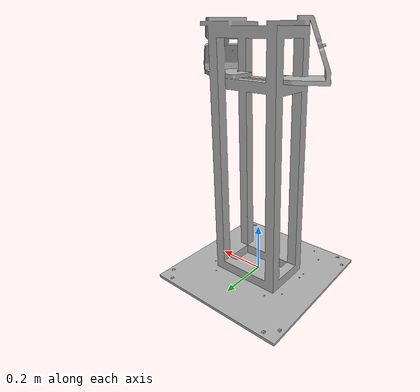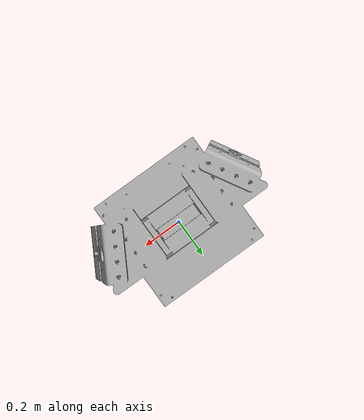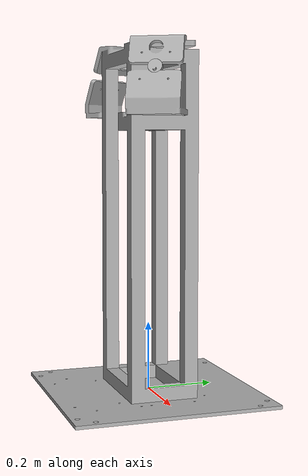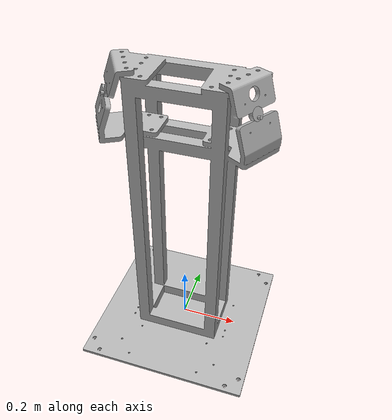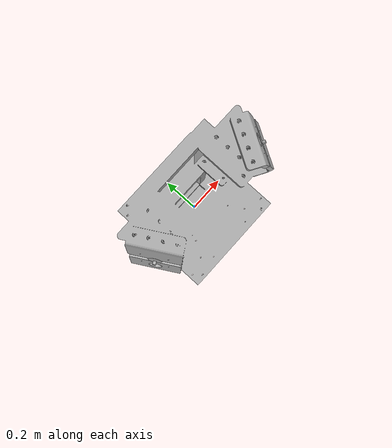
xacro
<?xml version="1.0" ?>
<robot name="dual_arm_base" xmlns:xacro="http://www.ros.org/wiki/xacro">

<xacro:macro name="dual_arm_base" params="">
<xacro:include filename="$(find dual_arm_base_description)/urdf/materials.xacro" />
<xacro:include filename="$(find dual_arm_base_description)/urdf/dual_arm_base.trans" />
<xacro:include filename="$(find dual_arm_base_description)/urdf/dual_arm_base.gazebo" />
<link name="base_link">
  <inertial>
    <origin xyz="3.9680686415535705e-05 -0.004421128953433873 0.4642896462729474" rpy="0 0 0"/>
    <mass value="121.49724874784835"/>
    <inertia ixx="20.409562" iyy="21.64045" izz="3.857874" ixy="0.000835" iyz="0.240067" ixz="0.001016"/>
  </inertial>
  <visual>
    <origin xyz="-0.0 -0.0 -0.0" rpy="0.0 -0.0 0.0"/>
    <geometry>
      <mesh filename="package://dual_arm_base_description/meshes/base_link.stl" scale="0.001 0.001 0.001"/>
    </geometry>
    <material name="silver"/>
  </visual>
  <collision>
    <origin xyz="-0.0 -0.0 -0.0" rpy="0.0 -0.0 0.0"/>
    <geometry>
      <mesh filename="package://dual_arm_base_description/meshes/base_link.stl" scale="0.001 0.001 0.001"/>
    </geometry>
  </collision>
</link>

<link name="L_1">
  <inertial>
    <origin xyz="0.2178261897471836 -0.05256210683074138 0.9426576693604092" rpy="0 0 0"/>
    <mass value="0.15413438956674883"/>
    <inertia ixx="2.6e-05" iyy="2.1e-05" izz="2e-05" ixy="-4e-06" iyz="-2e-06" ixz="4e-06"/>
  </inertial>
  <visual>
    <origin xyz="-0.0 -0.0 -0.015" rpy="0.0 -0.0 0.0"/>
    <geometry>
      <mesh filename="package://dual_arm_base_description/meshes/L_1.stl" scale="0.001 0.001 0.001"/>
    </geometry>
    <material name="silver"/>
  </visual>
  <collision>
    <origin xyz="-0.0 -0.0 -0.015" rpy="0.0 -0.0 0.0"/>
    <geometry>
      <mesh filename="package://dual_arm_base_description/meshes/L_1.stl" scale="0.001 0.001 0.001"/>
    </geometry>
  </collision>
</link>

<link name="R_1">
  <inertial>
    <origin xyz="-0.21782618974718296 -0.052562105830744235 0.942657669360409" rpy="0 0 0"/>
    <mass value="0.15413438956674883"/>
    <inertia ixx="2.6e-05" iyy="2.1e-05" izz="2e-05" ixy="4e-06" iyz="-2e-06" ixz="-4e-06"/>
  </inertial>
  <visual>
    <origin xyz="-0.0 -0.0 -0.015" rpy="0.0 -0.0 0.0"/>
    <geometry>
      <mesh filename="package://dual_arm_base_description/meshes/R_1.stl" scale="0.001 0.001 0.001"/>
    </geometry>
    <material name="silver"/>
  </visual>
  <collision>
    <origin xyz="-0.0 -0.0 -0.015" rpy="0.0 -0.0 0.0"/>
    <geometry>
      <mesh filename="package://dual_arm_base_description/meshes/R_1.stl" scale="0.001 0.001 0.001"/>
    </geometry>
  </collision>
</link>

<transmission name="joint_l_0_tran">
  <type>transmission_interface/SimpleTransmission</type>
  <joint name="joint_l_0">
    <hardwareInterface>hardware_interface/EffortJointInterface</hardwareInterface>
  </joint>
  <actuator name="joint_l_0_actr">
    <hardwareInterface>hardware_interface/EffortJointInterface</hardwareInterface>
    <mechanicalReduction>1</mechanicalReduction>
  </actuator>
</transmission>

<joint name="joint_l_0" type="fixed">
  <origin xyz="0.223407 -0.055779 0.945428" rpy="0.030792 -1.221558 2.585226"/>
  <parent link="base_link"/>
  <child link="L_1"/>
</joint>

<transmission name="joint_r_0_tran">
  <type>transmission_interface/SimpleTransmission</type>
  <joint name="joint_r_0">
    <hardwareInterface>hardware_interface/EffortJointInterface</hardwareInterface>
  </joint>
  <actuator name="joint_r_0_actr">
    <hardwareInterface>hardware_interface/EffortJointInterface</hardwareInterface>
    <mechanicalReduction>1</mechanicalReduction>
  </actuator>
</transmission>

<joint name="joint_r_0" type="fixed">
  <origin xyz="-0.223407 -0.055779 0.945428" rpy="-0.030792 -1.221558 0.556367"/>
  <parent link="base_link"/>
  <child link="R_1"/>
</joint>

</xacro:macro>
<xacro:dual_arm_base />
</robot>

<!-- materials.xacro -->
<robot xmlns:xacro="http://www.ros.org/wiki/xacro" name="dual_arm_base">
  <material name="silver">
    <color rgba="0.700 0.700 0.700 1.000"/>
  </material>
</robot>

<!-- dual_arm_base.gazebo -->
<robot xmlns:xacro="http://www.ros.org/wiki/xacro" name="dual_arm_base">
  <xacro:property name="body_color" value="Gazebo/Silver"/>
  <gazebo>
    <plugin name="control" filename="libgazebo_ros_control.so"/>
  </gazebo>
  <gazebo reference="base_link">
    <material>${body_color}</material>
    <mu1>0.2</mu1>
    <mu2>0.2</mu2>
    <selfCollide>true</selfCollide>
    <gravity>true</gravity>
  </gazebo>
  <gazebo reference="L_1">
    <material>${body_color}</material>
    <mu1>0.2</mu1>
    <mu2>0.2</mu2>
    <selfCollide>true</selfCollide>
  </gazebo>
  <gazebo reference="R_1">
    <material>${body_color}</material>
    <mu1>0.2</mu1>
    <mu2>0.2</mu2>
    <selfCollide>true</selfCollide>
  </gazebo>
</robot>
